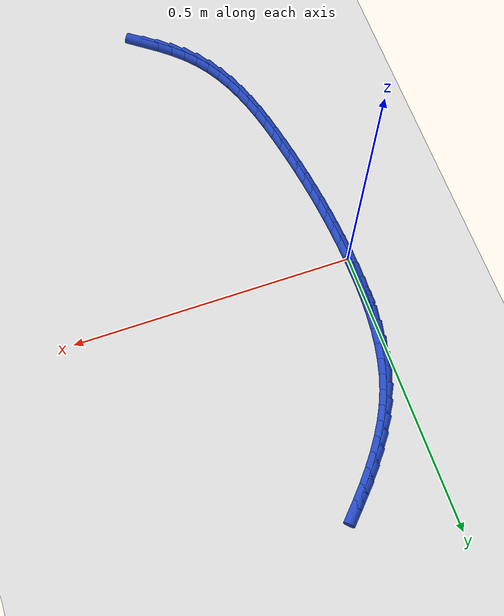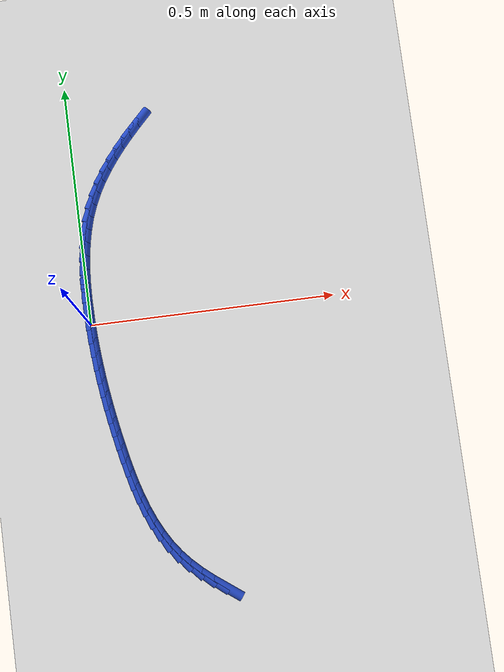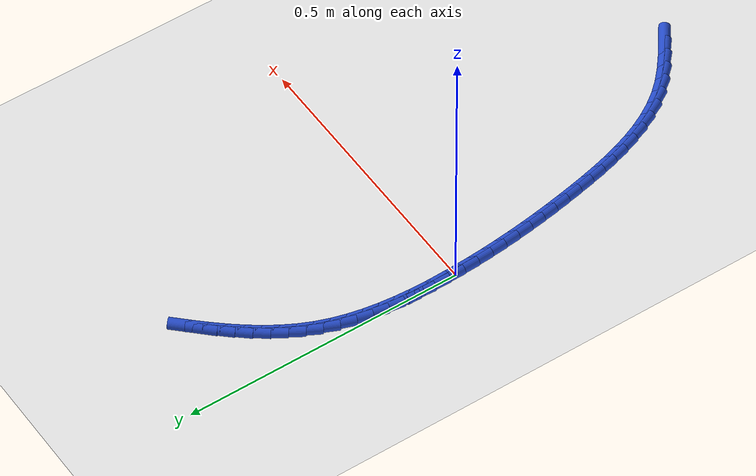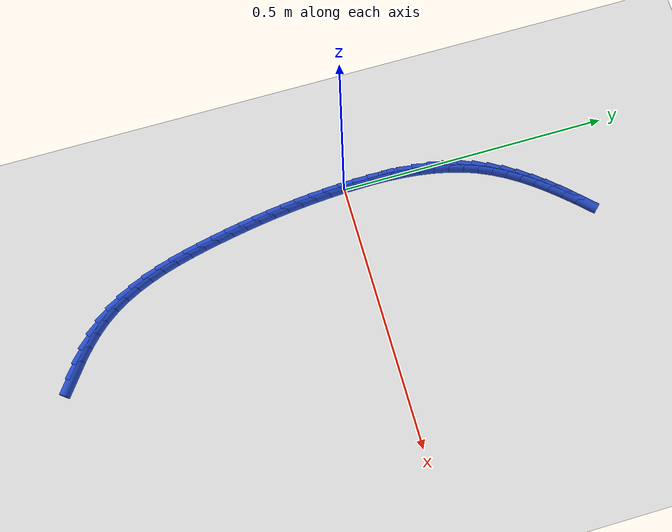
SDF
<sdf version="1.6">
 <world name="default">
  <model name="ground_plane">
   <static>1</static>
   <link name="link">
    <collision name="collision">
     <geometry><plane><normal>0 0 1</normal><size>100 100</size></plane></geometry>
     <surface><friction><ode><mu>100</mu><mu2>50</mu2></ode></friction></surface>
    </collision>
    <visual name="visual">
     <cast_shadows>0</cast_shadows>
     <geometry><plane><normal>0 0 1</normal><size>100 100</size></plane></geometry>
     <material>
      <script><uri>file://media/materials/scripts/gazebo.material</uri><name>Gazebo/WhiteGlow</name></script>
     </material>
    </visual>
   </link>
  </model>
  <model name="line">
   <link name="link_0">
    <pose>1.0733601507606494e-17 -3.469446951953614e-17 0.01 0 1.57 -1.5398319304668007</pose>
    <collision name="collision">
     <geometry><cylinder><radius>0.01</radius><length>0.08</length></cylinder></geometry>
    </collision>
    <visual name="visual">
     <material>
      <script><name>Gazebo/Blue</name><uri>file://media/materials/scripts/gazebo.material</uri></script>
     </material>
     <geometry><cylinder><radius>0.01</radius><length>0.08</length></cylinder></geometry>
    </visual>
   </link>
   <link name="link_1">
    <pose>-0.0008739629196933045 0.028215747396649095 0.01 0 1.57 -1.5648753969789717</pose>
    <collision name="collision">
     <geometry><cylinder><radius>0.01</radius><length>0.08</length></cylinder></geometry>
    </collision>
    <visual name="visual">
     <material>
      <script><name>Gazebo/Blue</name><uri>file://media/materials/scripts/gazebo.material</uri></script>
     </material>
     <geometry><cylinder><radius>0.01</radius><length>0.08</length></cylinder></geometry>
    </visual>
   </link>
   <link name="link_2">
    <pose>-0.0010419331608630842 0.05658431171339357 0.01 0 1.57 1.546193624552556</pose>
    <collision name="collision">
     <geometry><cylinder><radius>0.01</radius><length>0.08</length></cylinder></geometry>
    </collision>
    <visual name="visual">
     <material>
      <script><name>Gazebo/Blue</name><uri>file://media/materials/scripts/gazebo.material</uri></script>
     </material>
     <geometry><cylinder><radius>0.01</radius><length>0.08</length></cylinder></geometry>
    </visual>
   </link>
   <link name="link_3">
    <pose>-0.0003435202010921314 0.08496623628374617 0.01 0 1.57 1.509816067381193</pose>
    <collision name="collision">
     <geometry><cylinder><radius>0.01</radius><length>0.08</length></cylinder></geometry>
    </collision>
    <visual name="visual">
     <material>
      <script><name>Gazebo/Blue</name><uri>file://media/materials/scripts/gazebo.material</uri></script>
     </material>
     <geometry><cylinder><radius>0.01</radius><length>0.08</length></cylinder></geometry>
    </visual>
   </link>
   <link name="link_4">
    <pose>0.0013816664820367492 0.11322206444121961 0.01 0 1.57 1.4671207166161329</pose>
    <collision name="collision">
     <geometry><cylinder><radius>0.01</radius><length>0.08</length></cylinder></geometry>
    </collision>
    <visual name="visual">
     <material>
      <script><name>Gazebo/Blue</name><uri>file://media/materials/scripts/gazebo.material</uri></script>
     </material>
     <geometry><cylinder><radius>0.01</radius><length>0.08</length></cylinder></geometry>
    </visual>
   </link>
   <link name="link_5">
    <pose>0.0042940174109407534 0.14121233951932657 0.01 0 1.57 1.417579775993468</pose>
    <collision name="collision">
     <geometry><cylinder><radius>0.01</radius><length>0.08</length></cylinder></geometry>
    </collision>
    <visual name="visual">
     <material>
      <script><name>Gazebo/Blue</name><uri>file://media/materials/scripts/gazebo.material</uri></script>
     </material>
     <geometry><cylinder><radius>0.01</radius><length>0.08</length></cylinder></geometry>
    </visual>
   </link>
   <link name="link_6">
    <pose>0.008553923108037079 0.16879760485157969 0.01 0 1.57 1.3606439043864245</pose>
    <collision name="collision">
     <geometry><cylinder><radius>0.01</radius><length>0.08</length></cylinder></geometry>
    </collision>
    <visual name="visual">
     <material>
      <script><name>Gazebo/Blue</name><uri>file://media/materials/scripts/gazebo.material</uri></script>
     </material>
     <geometry><cylinder><radius>0.01</radius><length>0.08</length></cylinder></geometry>
    </visual>
   </link>
   <link name="link_7">
    <pose>0.014321774095742925 0.19583840377149192 0.01 0 1.57 1.29580930253947</pose>
    <collision name="collision">
     <geometry><cylinder><radius>0.01</radius><length>0.08</length></cylinder></geometry>
    </collision>
    <visual name="visual">
     <material>
      <script><name>Gazebo/Blue</name><uri>file://media/materials/scripts/gazebo.material</uri></script>
     </material>
     <geometry><cylinder><radius>0.01</radius><length>0.08</length></cylinder></geometry>
    </visual>
   </link>
   <link name="link_8">
    <pose>0.02175796089647548 0.22219527961257562 0.01 0 1.57 1.2227171143530922</pose>
    <collision name="collision">
     <geometry><cylinder><radius>0.01</radius><length>0.08</length></cylinder></geometry>
    </collision>
    <visual name="visual">
     <material>
      <script><name>Gazebo/Blue</name><uri>file://media/materials/scripts/gazebo.material</uri></script>
     </material>
     <geometry><cylinder><radius>0.01</radius><length>0.08</length></cylinder></geometry>
    </visual>
   </link>
   <link name="link_9">
    <pose>0.031022874032651956 0.24772877570834376 0.01 0 1.57 1.143598132794401</pose>
    <collision name="collision">
     <geometry><cylinder><radius>0.01</radius><length>0.08</length></cylinder></geometry>
    </collision>
    <visual name="visual">
     <material>
      <script><name>Gazebo/Blue</name><uri>file://media/materials/scripts/gazebo.material</uri></script>
     </material>
     <geometry><cylinder><radius>0.01</radius><length>0.08</length></cylinder></geometry>
    </visual>
   </link>
   <link name="link_10">
    <pose>0.042223870284687666 0.2723336825484043 0.01 0 1.57 1.0693211557842757</pose>
    <collision name="collision">
     <geometry><cylinder><radius>0.01</radius><length>0.08</length></cylinder></geometry>
    </collision>
    <visual name="visual">
     <material>
      <script><name>Gazebo/Blue</name><uri>file://media/materials/scripts/gazebo.material</uri></script>
     </material>
     <geometry><cylinder><radius>0.01</radius><length>0.08</length></cylinder></geometry>
    </visual>
   </link>
   <link name="link_11">
    <pose>0.05523027740338111 0.29605850063838207 0.01 0 1.57 1.0034918648156992</pose>
    <collision name="collision">
     <geometry><cylinder><radius>0.01</radius><length>0.08</length></cylinder></geometry>
    </collision>
    <visual name="visual">
     <material>
      <script><name>Gazebo/Blue</name><uri>file://media/materials/scripts/gazebo.material</uri></script>
     </material>
     <geometry><cylinder><radius>0.01</radius><length>0.08</length></cylinder></geometry>
    </visual>
   </link>
   <link name="link_12">
    <pose>0.06984467120085563 0.318994836325149 0.01 0 1.57 0.9464020074330822</pose>
    <collision name="collision">
     <geometry><cylinder><radius>0.01</radius><length>0.08</length></cylinder></geometry>
    </collision>
    <visual name="visual">
     <material>
      <script><name>Gazebo/Blue</name><uri>file://media/materials/scripts/gazebo.material</uri></script>
     </material>
     <geometry><cylinder><radius>0.01</radius><length>0.08</length></cylinder></geometry>
    </visual>
   </link>
   <link name="link_13">
    <pose>0.08586962412369734 0.3412342981289122 0.01 0 1.57 0.8980108743850942</pose>
    <collision name="collision">
     <geometry><cylinder><radius>0.01</radius><length>0.08</length></cylinder></geometry>
    </collision>
    <visual name="visual">
     <material>
      <script><name>Gazebo/Blue</name><uri>file://media/materials/scripts/gazebo.material</uri></script>
     </material>
     <geometry><cylinder><radius>0.01</radius><length>0.08</length></cylinder></geometry>
    </visual>
   </link>
   <link name="link_14">
    <pose>0.10310770861849235 0.3628684945698781 0.01 0 1.57 0.8580775403388963</pose>
    <collision name="collision">
     <geometry><cylinder><radius>0.01</radius><length>0.08</length></cylinder></geometry>
    </collision>
    <visual name="visual">
     <material>
      <script><name>Gazebo/Blue</name><uri>file://media/materials/scripts/gazebo.material</uri></script>
     </material>
     <geometry><cylinder><radius>0.01</radius><length>0.08</length></cylinder></geometry>
    </visual>
   </link>
   <link name="link_15">
    <pose>0.12136149713182674 0.3839890341682537 0.01 0 1.57 0.8262706245816464</pose>
    <collision name="collision">
     <geometry><cylinder><radius>0.01</radius><length>0.08</length></cylinder></geometry>
    </collision>
    <visual name="visual">
     <material>
      <script><name>Gazebo/Blue</name><uri>file://media/materials/scripts/gazebo.material</uri></script>
     </material>
     <geometry><cylinder><radius>0.01</radius><length>0.08</length></cylinder></geometry>
    </visual>
   </link>
   <link name="link_16">
    <pose>0.14043356211028674 0.4046875254442459 0.01 0 1.57 0.8022493219237204</pose>
    <collision name="collision">
     <geometry><cylinder><radius>0.01</radius><length>0.08</length></cylinder></geometry>
    </collision>
    <visual name="visual">
     <material>
      <script><name>Gazebo/Blue</name><uri>file://media/materials/scripts/gazebo.material</uri></script>
     </material>
     <geometry><cylinder><radius>0.01</radius><length>0.08</length></cylinder></geometry>
    </visual>
   </link>
   <link name="link_228">
    <pose>0.20532821836752307 -0.5542596270974747 0.01 0 1.57 -0.6368485440759974</pose>
    <collision name="collision">
     <geometry><cylinder><radius>0.01</radius><length>0.08</length></cylinder></geometry>
    </collision>
    <visual name="visual">
     <material>
      <script><name>Gazebo/Blue</name><uri>file://media/materials/scripts/gazebo.material</uri></script>
     </material>
     <geometry><cylinder><radius>0.01</radius><length>0.08</length></cylinder></geometry>
    </visual>
   </link>
   <link name="link_229">
    <pose>0.1824869449377022 -0.5373649233923983 0.01 0 1.57 -0.6881707542212783</pose>
    <collision name="collision">
     <geometry><cylinder><radius>0.01</radius><length>0.08</length></cylinder></geometry>
    </collision>
    <visual name="visual">
     <material>
      <script><name>Gazebo/Blue</name><uri>file://media/materials/scripts/gazebo.material</uri></script>
     </material>
     <geometry><cylinder><radius>0.01</radius><length>0.08</length></cylinder></geometry>
    </visual>
   </link>
   <link name="link_230">
    <pose>0.16081663634483406 -0.5195461774127645 0.01 0 1.57 -0.7557377481249712</pose>
    <collision name="collision">
     <geometry><cylinder><radius>0.01</radius><length>0.08</length></cylinder></geometry>
    </collision>
    <visual name="visual">
     <material>
      <script><name>Gazebo/Blue</name><uri>file://media/materials/scripts/gazebo.material</uri></script>
     </material>
     <geometry><cylinder><radius>0.01</radius><length>0.08</length></cylinder></geometry>
    </visual>
   </link>
   <link name="link_231">
    <pose>0.14066087168634392 -0.5005519581739706 0.01 0 1.57 -0.8401850820863647</pose>
    <collision name="collision">
     <geometry><cylinder><radius>0.01</radius><length>0.08</length></cylinder></geometry>
    </collision>
    <visual name="visual">
     <material>
      <script><name>Gazebo/Blue</name><uri>file://media/materials/scripts/gazebo.material</uri></script>
     </material>
     <geometry><cylinder><radius>0.01</radius><length>0.08</length></cylinder></geometry>
    </visual>
   </link>
   <link name="link_232">
    <pose>0.12236318973685054 -0.48013086909496056 0.01 0 1.57 -0.9359570554306074</pose>
    <collision name="collision">
     <geometry><cylinder><radius>0.01</radius><length>0.08</length></cylinder></geometry>
    </collision>
    <visual name="visual">
     <material>
      <script><name>Gazebo/Blue</name><uri>file://media/materials/scripts/gazebo.material</uri></script>
     </material>
     <geometry><cylinder><radius>0.01</radius><length>0.08</length></cylinder></geometry>
    </visual>
   </link>
   <link name="link_233">
    <pose>0.10615580486701028 -0.4581264959313654 0.01 0 1.57 -1.024937328211745</pose>
    <collision name="collision">
     <geometry><cylinder><radius>0.01</radius><length>0.08</length></cylinder></geometry>
    </collision>
    <visual name="visual">
     <material>
      <script><name>Gazebo/Blue</name><uri>file://media/materials/scripts/gazebo.material</uri></script>
     </material>
     <geometry><cylinder><radius>0.01</radius><length>0.08</length></cylinder></geometry>
    </visual>
   </link>
   <link name="link_234">
    <pose>0.09191670997458656 -0.43468464732977685 0.01 0 1.57 -1.1030608223530276</pose>
    <collision name="collision">
     <geometry><cylinder><radius>0.01</radius><length>0.08</length></cylinder></geometry>
    </collision>
    <visual name="visual">
     <material>
      <script><name>Gazebo/Blue</name><uri>file://media/materials/scripts/gazebo.material</uri></script>
     </material>
     <geometry><cylinder><radius>0.01</radius><length>0.08</length></cylinder></geometry>
    </visual>
   </link>
   <link name="link_235">
    <pose>0.0794536028085037 -0.4100111079820816 0.01 0 1.57 -1.170338543993566</pose>
    <collision name="collision">
     <geometry><cylinder><radius>0.01</radius><length>0.08</length></cylinder></geometry>
    </collision>
    <visual name="visual">
     <material>
      <script><name>Gazebo/Blue</name><uri>file://media/materials/scripts/gazebo.material</uri></script>
     </material>
     <geometry><cylinder><radius>0.01</radius><length>0.08</length></cylinder></geometry>
    </visual>
   </link>
   <link name="link_236">
    <pose>0.06857418111768603 -0.38431166258016647 0.01 0 1.57 -1.2272118495500979</pose>
    <collision name="collision">
     <geometry><cylinder><radius>0.01</radius><length>0.08</length></cylinder></geometry>
    </collision>
    <visual name="visual">
     <material>
      <script><name>Gazebo/Blue</name><uri>file://media/materials/scripts/gazebo.material</uri></script>
     </material>
     <geometry><cylinder><radius>0.01</radius><length>0.08</length></cylinder></geometry>
    </visual>
   </link>
   <link name="link_237">
    <pose>0.05908614265105787 -0.3577920958159181 0.01 0 1.57 -1.2743164990709912</pose>
    <collision name="collision">
     <geometry><cylinder><radius>0.01</radius><length>0.08</length></cylinder></geometry>
    </collision>
    <visual name="visual">
     <material>
      <script><name>Gazebo/Blue</name><uri>file://media/materials/scripts/gazebo.material</uri></script>
     </material>
     <geometry><cylinder><radius>0.01</radius><length>0.08</length></cylinder></geometry>
    </visual>
   </link>
   <link name="link_238">
    <pose>0.05079718515754356 -0.33065819238122307 0.01 0 1.57 -1.3123128852714172</pose>
    <collision name="collision">
     <geometry><cylinder><radius>0.01</radius><length>0.08</length></cylinder></geometry>
    </collision>
    <visual name="visual">
     <material>
      <script><name>Gazebo/Blue</name><uri>file://media/materials/scripts/gazebo.material</uri></script>
     </material>
     <geometry><cylinder><radius>0.01</radius><length>0.08</length></cylinder></geometry>
    </visual>
   </link>
   <link name="link_239">
    <pose>0.04351500638606745 -0.3031157369679683 0.01 0 1.57 -1.3417757465426685</pose>
    <collision name="collision">
     <geometry><cylinder><radius>0.01</radius><length>0.08</length></cylinder></geometry>
    </collision>
    <visual name="visual">
     <material>
      <script><name>Gazebo/Blue</name><uri>file://media/materials/scripts/gazebo.material</uri></script>
     </material>
     <geometry><cylinder><radius>0.01</radius><length>0.08</length></cylinder></geometry>
    </visual>
   </link>
   <link name="link_240">
    <pose>0.03704730408555404 -0.27537051426804116 0.01 0 1.57 -1.3631254067456842</pose>
    <collision name="collision">
     <geometry><cylinder><radius>0.01</radius><length>0.08</length></cylinder></geometry>
    </collision>
    <visual name="visual">
     <material>
      <script><name>Gazebo/Blue</name><uri>file://media/materials/scripts/gazebo.material</uri></script>
     </material>
     <geometry><cylinder><radius>0.01</radius><length>0.08</length></cylinder></geometry>
    </visual>
   </link>
   <link name="link_241">
    <pose>0.031201777926426776 -0.2476283065245455 0.01 0 1.57 -1.3782461125428074</pose>
    <collision name="collision">
     <geometry><cylinder><radius>0.01</radius><length>0.08</length></cylinder></geometry>
    </collision>
    <visual name="visual">
     <material>
      <script><name>Gazebo/Blue</name><uri>file://media/materials/scripts/gazebo.material</uri></script>
     </material>
     <geometry><cylinder><radius>0.01</radius><length>0.08</length></cylinder></geometry>
    </visual>
   </link>
   <link name="link_242">
    <pose>0.02582423852780926 -0.2200463269446066 0.01 0 1.57 -1.3930899096425486</pose>
    <collision name="collision">
     <geometry><cylinder><radius>0.01</radius><length>0.08</length></cylinder></geometry>
    </collision>
    <visual name="visual">
     <material>
      <script><name>Gazebo/Blue</name><uri>file://media/materials/scripts/gazebo.material</uri></script>
     </material>
     <geometry><cylinder><radius>0.01</radius><length>0.08</length></cylinder></geometry>
    </visual>
   </link>
   <link name="link_243">
    <pose>0.020896395365349166 -0.19260859765306074 0.01 0 1.57 -1.4089171595340362</pose>
    <collision name="collision">
     <geometry><cylinder><radius>0.01</radius><length>0.08</length></cylinder></geometry>
    </collision>
    <visual name="visual">
     <material>
      <script><name>Gazebo/Blue</name><uri>file://media/materials/scripts/gazebo.material</uri></script>
     </material>
     <geometry><cylinder><radius>0.01</radius><length>0.08</length></cylinder></geometry>
    </visual>
   </link>
   <link name="link_244">
    <pose>0.016430236679040113 -0.165260553165536 0.01 0 1.57 -1.425648607370917</pose>
    <collision name="collision">
     <geometry><cylinder><radius>0.01</radius><length>0.08</length></cylinder></geometry>
    </collision>
    <visual name="visual">
     <material>
      <script><name>Gazebo/Blue</name><uri>file://media/materials/scripts/gazebo.material</uri></script>
     </material>
     <geometry><cylinder><radius>0.01</radius><length>0.08</length></cylinder></geometry>
    </visual>
   </link>
   <link name="link_245">
    <pose>0.01243775070887571 -0.13794762799766036 0.01 0 1.57 -1.4431904887362084</pose>
    <collision name="collision">
     <geometry><cylinder><radius>0.01</radius><length>0.08</length></cylinder></geometry>
    </collision>
    <visual name="visual">
     <material>
      <script><name>Gazebo/Blue</name><uri>file://media/materials/scripts/gazebo.material</uri></script>
     </material>
     <geometry><cylinder><radius>0.01</radius><length>0.08</length></cylinder></geometry>
    </visual>
   </link>
   <link name="link_246">
    <pose>0.008930925694849576 -0.11061525666506188 0.01 0 1.57 -1.461436036847356</pose>
    <collision name="collision">
     <geometry><cylinder><radius>0.01</radius><length>0.08</length></cylinder></geometry>
    </collision>
    <visual name="visual">
     <material>
      <script><name>Gazebo/Blue</name><uri>file://media/materials/scripts/gazebo.material</uri></script>
     </material>
     <geometry><cylinder><radius>0.01</radius><length>0.08</length></cylinder></geometry>
    </visual>
   </link>
   <link name="link_247">
    <pose>0.005921749876955325 -0.0832088736833686 0.01 0 1.57 -1.4802675463397892</pose>
    <collision name="collision">
     <geometry><cylinder><radius>0.01</radius><length>0.08</length></cylinder></geometry>
    </collision>
    <visual name="visual">
     <material>
      <script><name>Gazebo/Blue</name><uri>file://media/materials/scripts/gazebo.material</uri></script>
     </material>
     <geometry><cylinder><radius>0.01</radius><length>0.08</length></cylinder></geometry>
    </visual>
   </link>
   <link name="link_248">
    <pose>0.0034222114951865724 -0.055673913568208507 0.01 0 1.57 -1.4995589201056834</pose>
    <collision name="collision">
     <geometry><cylinder><radius>0.01</radius><length>0.08</length></cylinder></geometry>
    </collision>
    <visual name="visual">
     <material>
      <script><name>Gazebo/Blue</name><uri>file://media/materials/scripts/gazebo.material</uri></script>
     </material>
     <geometry><cylinder><radius>0.01</radius><length>0.08</length></cylinder></geometry>
    </visual>
   </link>
   <link name="link_249">
    <pose>0.001444298789536929 -0.02795581083520967 0.01 0 1.57 -1.5191785846222063</pose>
    <collision name="collision">
     <geometry><cylinder><radius>0.01</radius><length>0.08</length></cylinder></geometry>
    </collision>
    <visual name="visual">
     <material>
      <script><name>Gazebo/Blue</name><uri>file://media/materials/scripts/gazebo.material</uri></script>
     </material>
     <geometry><cylinder><radius>0.01</radius><length>0.08</length></cylinder></geometry>
    </visual>
   </link>
   <link name="link_250">
    <pose>8.998878031629687e-18 -7.632783294297951e-17 0.01 0 1.57 -1.5389926265362155</pose>
    <collision name="collision">
     <geometry><cylinder><radius>0.01</radius><length>0.08</length></cylinder></geometry>
    </collision>
    <visual name="visual">
     <material>
      <script><name>Gazebo/Blue</name><uri>file://media/materials/scripts/gazebo.material</uri></script>
     </material>
     <geometry><cylinder><radius>0.01</radius><length>0.08</length></cylinder></geometry>
    </visual>
   </link>
   <link name="link_251">
    <pose>-0.0008986966334305693 0.028248084421792233 0.01 0 1.57 -1.5588679836705892</pose>
    <collision name="collision">
     <geometry><cylinder><radius>0.01</radius><length>0.08</length></cylinder></geometry>
    </collision>
    <visual name="visual">
     <material>
      <script><name>Gazebo/Blue</name><uri>file://media/materials/scripts/gazebo.material</uri></script>
     </material>
     <geometry><cylinder><radius>0.01</radius><length>0.08</length></cylinder></geometry>
    </visual>
   </link>
   <link name="link_252">
    <pose>-0.0012398028707611953 0.05684300791453922 0.01 0 1.57 -1.5489887840069596</pose>
    <collision name="collision">
     <geometry><cylinder><radius>0.01</radius><length>0.08</length></cylinder></geometry>
    </collision>
    <visual name="visual">
     <material>
      <script><name>Gazebo/Blue</name><uri>file://media/materials/scripts/gazebo.material</uri></script>
     </material>
     <geometry><cylinder><radius>0.01</radius><length>0.08</length></cylinder></geometry>
    </visual>
   </link>
  </model>
 </world>
</sdf>
